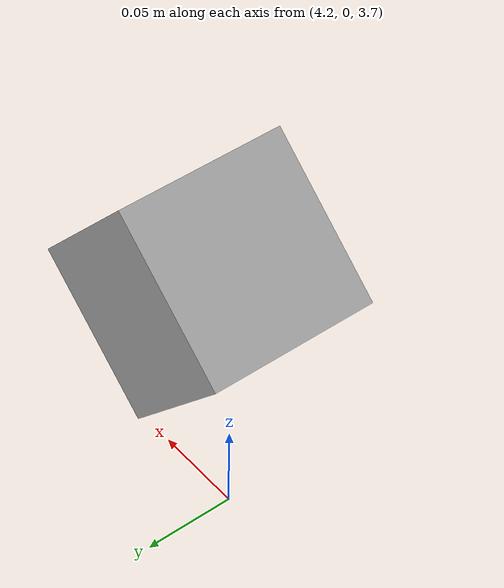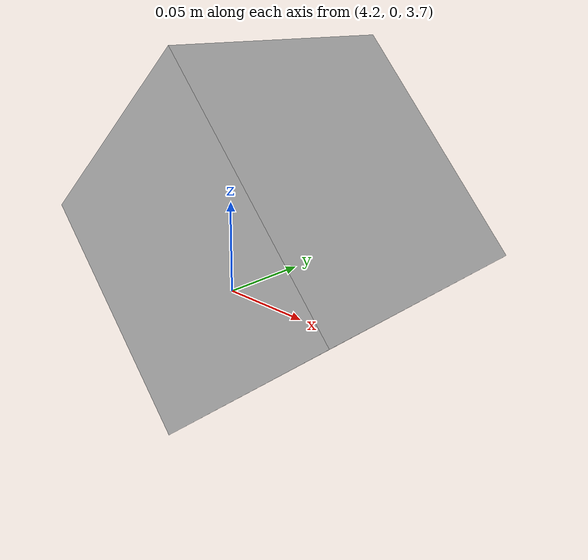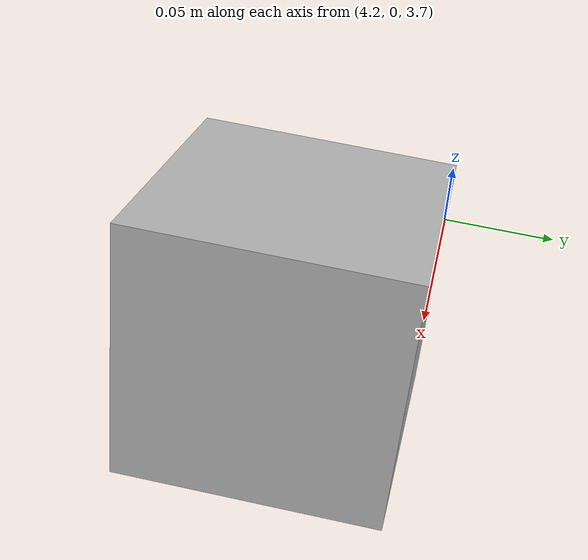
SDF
<?xml version="1.0" ?>

<sdf version="1.8">
  <world name="collision_test">
    <physics name='1ms' type='ignored'>
      <max_step_size>0.001</max_step_size>
      <real_time_factor>1</real_time_factor>
      <real_time_update_rate>1000</real_time_update_rate>
    </physics>
    <plugin name='gz::sim::systems::Physics' filename='gz-sim-physics-system'/>
    <plugin name='gz::sim::systems::UserCommands' filename='gz-sim-user-commands-system'/>
    <plugin name='gz::sim::systems::SceneBroadcaster' filename='gz-sim-scene-broadcaster-system'/>
    <plugin filename="gz-sim-sensors-system" name="gz::sim::systems::Sensors">
      <render_engine>ogre2</render_engine>
    </plugin>

    <plugin filename="libgz-sim-contact-system.so" name="gz::sim::systems::Contact">
    </plugin>
    <scene>
      <ambient>1.0 1.0 1.0</ambient>
      <background>0.8 0.8 0.8</background>
    </scene>

    <light type="directional" name="sun">
      <cast_shadows>true</cast_shadows>
      <pose>0 0 10 0 0 0</pose>
      <diffuse>0.8 0.8 0.8 1</diffuse>
      <specular>0.2 0.2 0.2 1</specular>
      <attenuation>
        <range>1000</range>
        <constant>0.9</constant>
        <linear>0.01</linear>
        <quadratic>0.001</quadratic>
      </attenuation>
      <direction>-0.5 0.1 -0.9</direction>
    </light>

    <model name="ground_plane">
      <static>true</static>
      <link name="link">
        <collision name="collision">
          <geometry>
            <plane>
              <normal>0 0 1</normal>
              <size>100 100</size>
            </plane>
          </geometry>
        </collision>
        <visual name="visual">
          <geometry>
            <plane>
              <normal>0 0 1</normal>
              <size>100 100</size>
            </plane>
          </geometry>
          <material>
            <ambient>0.94 0.90 0.81 1</ambient>
            <diffuse>0.94 0.90 0.81 1</diffuse>
            <specular>1 1 1 0</specular>
          </material>
        </visual>
      </link>
    </model>

    <model name="rgbd_camera">
      <static>true</static>
      <pose>5 0 3 0 0.707 3.14</pose>
      <link name="link">
        <pose>0.05 0.05 1.05 0 0 0</pose>
        <inertial>
          <mass>0.1</mass>
          <inertia>
            <ixx>0.000166667</ixx>
            <iyy>0.000166667</iyy>
            <izz>0.000166667</izz>
          </inertia>
        </inertial>
        <collision name="collision">
          <geometry>
            <box>
              <size>0.1 0.1 0.1</size>
            </box>
          </geometry>
        </collision>
        <visual name="visual">
          <geometry>
            <box>
              <size>0.1 0.1 0.1</size>
            </box>
          </geometry>
        </visual>
        <sensor name="rgbd_camera" type="rgbd_camera">
          <camera>
            <horizontal_fov>1.047</horizontal_fov>
            <image>
              <width>1280</width>
              <height>720</height>
            </image>
            <clip>
              <near>0.1</near>
              <far>100</far>
            </clip>
          </camera>
          <always_on>1</always_on>
          <update_rate>30</update_rate>
          <visualize>true</visualize>
          <topic>rgbd_camera</topic>
          <enable_metrics>true</enable_metrics>
        </sensor>
      </link>
    </model>

  </world>
</sdf>
